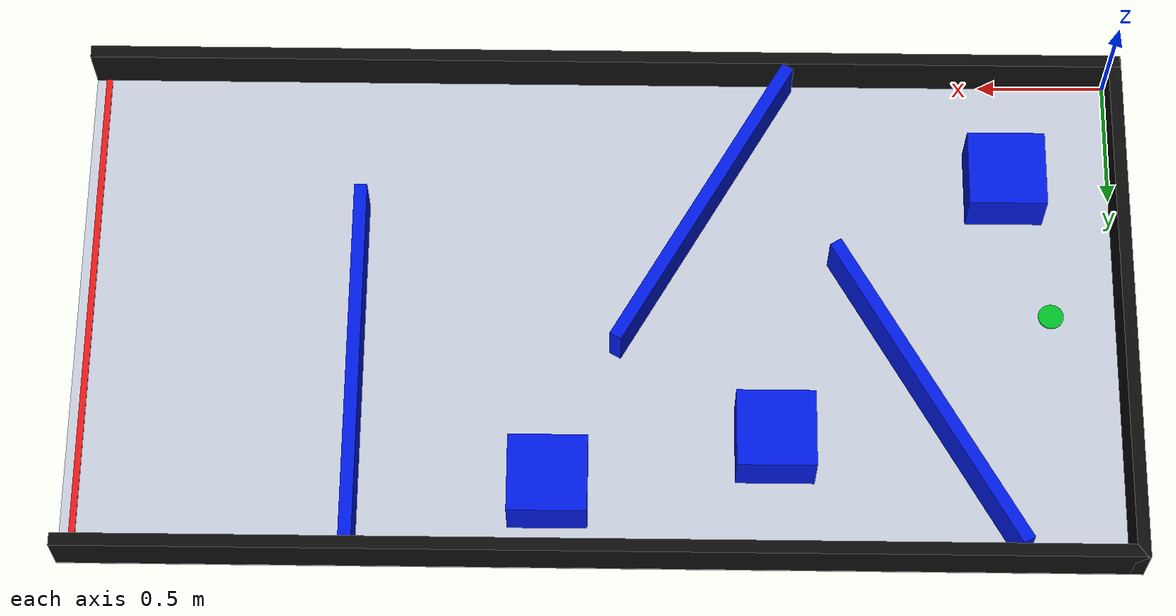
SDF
<?xml version="1.0"?>
<sdf version="1.9">
  <world name="phase2_course">

    <plugin filename="ignition-gazebo-physics-system" name="ignition::gazebo::systems::Physics"/>
    <plugin filename="ignition-gazebo-user-commands-system" name="ignition::gazebo::systems::UserCommands"/>
    <plugin filename="ignition-gazebo-scene-broadcaster-system" name="ignition::gazebo::systems::SceneBroadcaster"/>
    <plugin filename="ignition-gazebo-contact-system" name="ignition::gazebo::systems::Contact"/>
    <physics name="default_physics" type="ode">
      <max_step_size>0.001</max_step_size>
      <real_time_factor>1.0</real_time_factor>
    </physics>

    <light name="sun" type="directional">
      <cast_shadows>true</cast_shadows>
      <pose>0 0 10 0 0 0</pose>
      <diffuse>0.8 0.8 0.8 1</diffuse>
      <specular>0.2 0.2 0.2 1</specular>
      <direction>-0.5 0.2 -1</direction>
    </light>

    <model name="ground_plane">
      <static>true</static>
      <link name="link">
        <collision name="collision">
          <geometry>
            <box>
              <size>4.10 2.10 0.01</size>
            </box>
          </geometry>
        </collision>
        <visual name="visual">
          <pose>0 0 0.001 0 0 0</pose>
          <geometry>
            <box>
              <size>4.10 2.10 0.002</size>
            </box>
          </geometry>
          <material>
            <ambient>0.78 0.80 0.86 1</ambient>
            <diffuse>0.78 0.80 0.86 1</diffuse>
          </material>
        </visual>
      </link>
      <pose>2.0 1.0 -0.005 0 0 0</pose>
    </model>

    <!-- Outer walls sit just outside the 4.0 m x 2.0 m course bounds. -->
    <model name="left_boundary_wall">
      <static>true</static>
      <pose>-0.025 1.0 0.10 0 0 0</pose>
      <link name="link">
        <collision name="collision"><geometry><box><size>0.05 2.10 0.20</size></box></geometry></collision>
        <visual name="visual"><geometry><box><size>0.05 2.10 0.20</size></box></geometry><material><ambient>0.05 0.05 0.05 1</ambient><diffuse>0.05 0.05 0.05 1</diffuse></material></visual>
      </link>
    </model>
    <!-- right_boundary_wall removed: x=4.0 is the finish line, not a blocking wall. -->
    <model name="bottom_boundary_wall">
      <static>true</static>
      <pose>2.0 -0.025 0.10 0 0 0</pose>
      <link name="link">
        <collision name="collision"><geometry><box><size>4.10 0.05 0.20</size></box></geometry></collision>
        <visual name="visual"><geometry><box><size>4.10 0.05 0.20</size></box></geometry><material><ambient>0.05 0.05 0.05 1</ambient><diffuse>0.05 0.05 0.05 1</diffuse></material></visual>
      </link>
    </model>
    <model name="top_boundary_wall">
      <static>true</static>
      <pose>2.0 2.025 0.10 0 0 0</pose>
      <link name="link">
        <collision name="collision"><geometry><box><size>4.10 0.05 0.20</size></box></geometry></collision>
        <visual name="visual"><geometry><box><size>4.10 0.05 0.20</size></box></geometry><material><ambient>0.05 0.05 0.05 1</ambient><diffuse>0.05 0.05 0.05 1</diffuse></material></visual>
      </link>
    </model>

    <!-- Internal obstacles from Part01/map_spec.py, extruded to 0.20 m. -->
    <model name="bottom_left_bar">
      <static>true</static>
      <pose>0.7483 1.3813 0.10 0 0 -1.0471975512</pose>
      <link name="link">
        <collision name="collision"><geometry><box><size>1.40 0.05 0.20</size></box></geometry></collision>
        <visual name="visual"><geometry><box><size>1.40 0.05 0.20</size></box></geometry><material><ambient>0.0 0.1 0.9 1</ambient><diffuse>0.0 0.1 0.9 1</diffuse></material></visual>
      </link>
    </model>
    <model name="top_bar">
      <static>true</static>
      <pose>2.95 1.275 0.10 0 0 1.5707963268</pose>
      <link name="link">
        <collision name="collision"><geometry><box><size>1.45 0.05 0.20</size></box></geometry></collision>
        <visual name="visual"><geometry><box><size>1.45 0.05 0.20</size></box></geometry><material><ambient>0.0 0.1 0.9 1</ambient><diffuse>0.0 0.1 0.9 1</diffuse></material></visual>
      </link>
    </model>
    <model name="bottom_right_bar">
      <static>true</static>
      <pose>1.6113 0.5971 0.10 0 0 1.0471975512</pose>
      <link name="link">
        <collision name="collision"><geometry><box><size>1.35 0.05 0.20</size></box></geometry></collision>
        <visual name="visual"><geometry><box><size>1.35 0.05 0.20</size></box></geometry><material><ambient>0.0 0.1 0.9 1</ambient><diffuse>0.0 0.1 0.9 1</diffuse></material></visual>
      </link>
    </model>
    <model name="square_upper_left">
      <static>true</static>
      <pose>2.20 1.74 0.10 0 0 0</pose>
      <link name="link">
        <collision name="collision"><geometry><box><size>0.304 0.304 0.20</size></box></geometry></collision>
        <visual name="visual"><geometry><box><size>0.304 0.304 0.20</size></box></geometry><material><ambient>0.0 0.1 0.9 1</ambient><diffuse>0.0 0.1 0.9 1</diffuse></material></visual>
      </link>
    </model>
    <model name="square_mid_left">
      <static>true</static>
      <pose>1.335 1.55 0.10 0 0 0</pose>
      <link name="link">
        <collision name="collision"><geometry><box><size>0.304 0.304 0.20</size></box></geometry></collision>
        <visual name="visual"><geometry><box><size>0.304 0.304 0.20</size></box></geometry><material><ambient>0.0 0.1 0.9 1</ambient><diffuse>0.0 0.1 0.9 1</diffuse></material></visual>
      </link>
    </model>
    <model name="square_lower_right">
      <static>true</static>
      <pose>0.42 0.45 0.10 0 0 0</pose>
      <link name="link">
        <collision name="collision"><geometry><box><size>0.304 0.304 0.20</size></box></geometry></collision>
        <visual name="visual"><geometry><box><size>0.304 0.304 0.20</size></box></geometry><material><ambient>0.0 0.1 0.9 1</ambient><diffuse>0.0 0.1 0.9 1</diffuse></material></visual>
      </link>
    </model>

    <model name="start_marker">
      <static>true</static>
      <pose>0.25 1.0 0.004 0 0 0</pose>
      <link name="link">
        <visual name="visual"><geometry><cylinder><radius>0.05</radius><length>0.006</length></cylinder></geometry><material><ambient>0.0 0.75 0.15 1</ambient><diffuse>0.0 0.75 0.15 1</diffuse></material></visual>
      </link>
    </model>
    <model name="end_line">
      <static>true</static>
      <pose>4.0 1.0 0.004 0 0 0</pose>
      <link name="link">
        <visual name="visual"><geometry><box><size>0.025 2.0 0.006</size></box></geometry><material><ambient>0.9 0.1 0.1 1</ambient><diffuse>0.9 0.1 0.1 1</diffuse></material></visual>
      </link>
    </model>
  </world>
</sdf>
